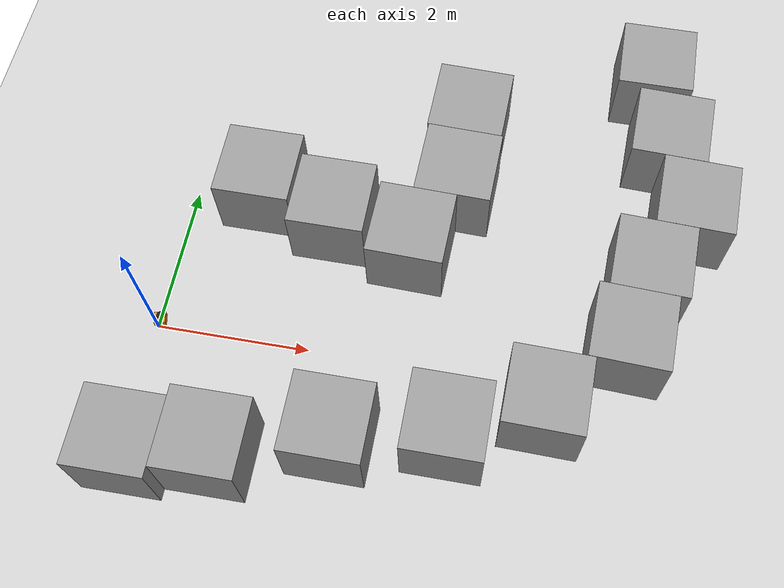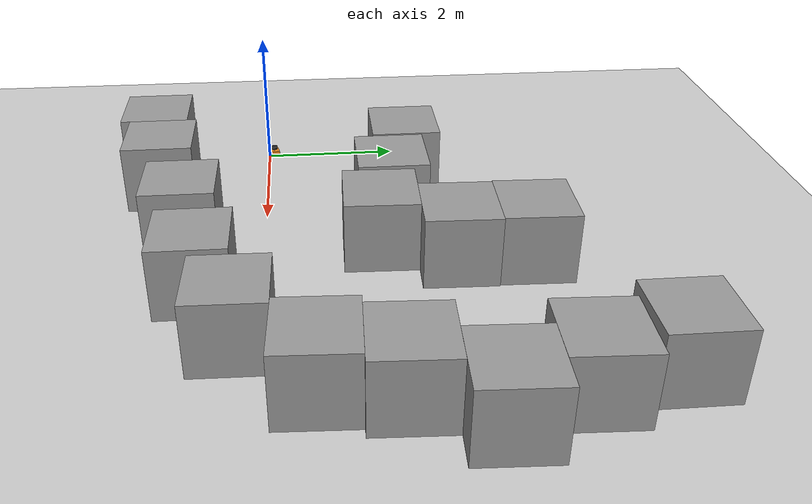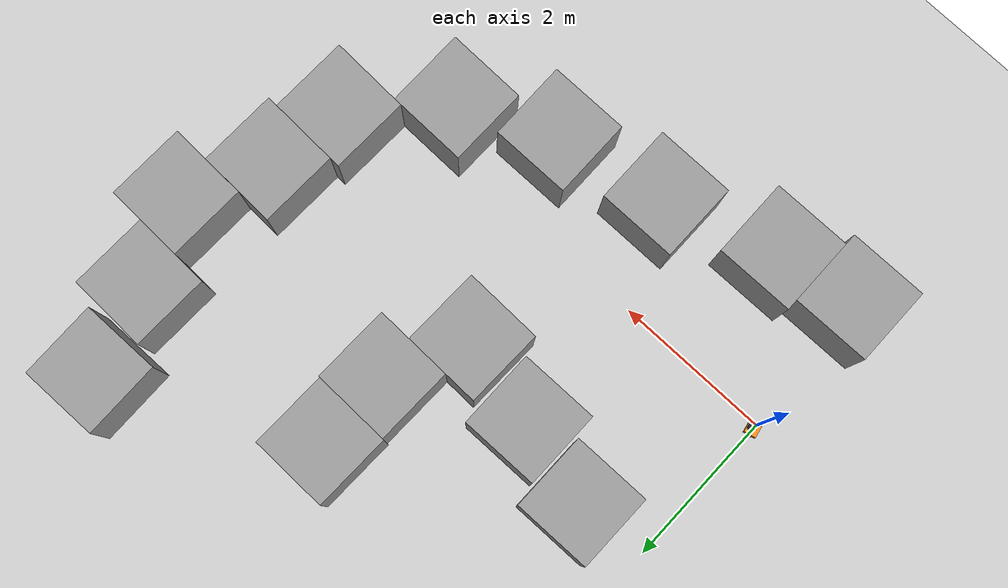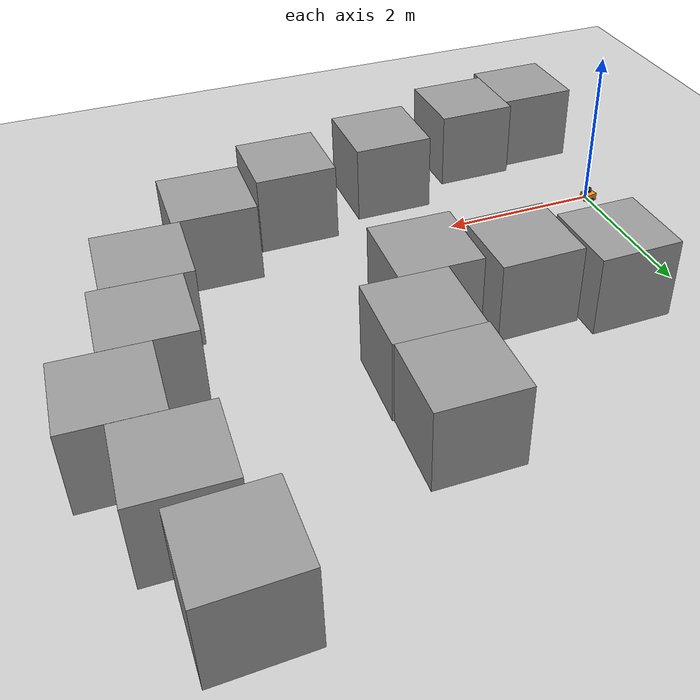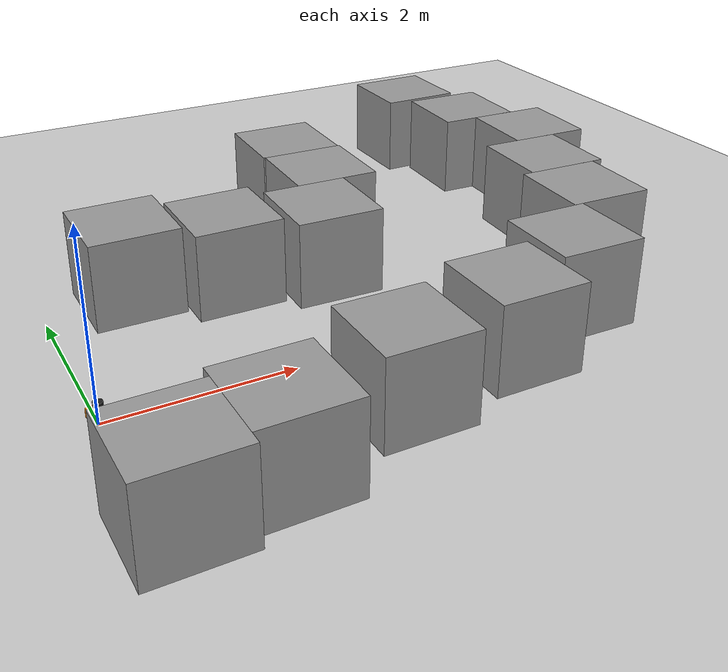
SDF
<sdf version="1.7">
 <world name="default">
  <light name="sun" type="directional">
   <pose>0 0 10 0 -0 0</pose>
   <diffuse>0.8 0.8 0.8 1</diffuse>
   <specular>0.2 0.2 0.2 1</specular>
   <attenuation>
    <range>1000</range>
    <constant>0.9</constant>
    <linear>0.01</linear>
    <quadratic>0.001</quadratic>
   </attenuation>
   <direction>-0.5 0.1 -0.9</direction>
   <spot><inner_angle>0</inner_angle><outer_angle>0</outer_angle><falloff>0</falloff></spot>
  </light>
  <model name="ground_plane">
   <static>1</static>
   <link name="link">
    <collision name="collision">
     <geometry><plane><normal>0 0 1</normal><size>100 100</size></plane></geometry>
     <surface><friction><ode><mu>100</mu><mu2>50</mu2></ode></friction></surface>
    </collision>
    <visual name="visual">
     <cast_shadows>0</cast_shadows>
     <geometry><plane><normal>0 0 1</normal><size>100 100</size></plane></geometry>
     <material>
      <script><uri>file://media/materials/scripts/gazebo.material</uri><name>Gazebo/Grey</name></script>
     </material>
    </visual>
   </link>
  </model>
  <gravity>0 0 -9.8</gravity>
  <magnetic_field>6e-06 2.3e-05 -4.2e-05</magnetic_field>
  <atmosphere type="adiabatic"/>
  <physics type="ode">
   <max_step_size>0.001</max_step_size>
   <real_time_factor>1</real_time_factor>
   <real_time_update_rate>1000</real_time_update_rate>
  </physics>
  <scene><ambient>0.4 0.4 0.4 1</ambient><background>0.7 0.7 0.7 1</background><shadows>1</shadows></scene>
  <audio><device>default</device></audio>
  <spherical_coordinates>
   <surface_model>EARTH_WGS84</surface_model>
   <latitude_deg>0</latitude_deg>
   <longitude_deg>0</longitude_deg>
   <elevation>0</elevation>
   <heading_deg>0</heading_deg>
  </spherical_coordinates>
  <model name="my_bot">
   <link name="base_link">
    <inertial>
     <pose>0.004032 0 0.014194 0 -0 0</pose>
     <mass>0.62</mass>
     <inertia>
      <ixx>0.0023779</ixx>
      <ixy>0</ixy>
      <ixz>-0.000214516</ixz>
      <iyy>0.00250232</iyy>
      <iyz>0</iyz>
      <izz>0.00212522</izz>
     </inertia>
    </inertial>
    <collision name="base_link_fixed_joint_lump__chassis_collision">
     <geometry><box><size>0.15 0.15 0.1</size></box></geometry>
    </collision>
    <collision name="base_link_fixed_joint_lump__back_caster_wheel_collision_1">
     <pose>-0.06 0 -0.06 0 -0 0</pose>
     <geometry><sphere><radius>0.01</radius></sphere></geometry>
     <surface><friction><ode><mu>0.001</mu><mu2>0.001</mu2></ode></friction></surface>
    </collision>
    <collision name="base_link_fixed_joint_lump__front_caster_wheel_collision_2">
     <pose>0.06 0 -0.06 0 -0 0</pose>
     <geometry><sphere><radius>0.01</radius></sphere></geometry>
     <surface><friction><ode><mu>0.001</mu><mu2>0.001</mu2></ode></friction></surface>
    </collision>
    <collision name="base_link_fixed_joint_lump__laser_frame_collision_3">
     <pose>0.025 0 0.1 0 -0 0</pose>
     <geometry><cylinder><length>0.04</length><radius>0.05</radius></cylinder></geometry>
    </collision>
    <visual name="base_link_fixed_joint_lump__chassis_visual">
     <geometry><box><size>0.15 0.15 0.1</size></box></geometry>
     <material>
      <script><name>Gazebo/Orange</name><uri>file://media/materials/scripts/gazebo.material</uri></script>
     </material>
    </visual>
    <visual name="base_link_fixed_joint_lump__back_caster_wheel_visual_1">
     <pose>-0.06 0 -0.06 0 -0 0</pose>
     <geometry><sphere><radius>0.01</radius></sphere></geometry>
     <material>
      <script><name>Gazebo/White</name><uri>file://media/materials/scripts/gazebo.material</uri></script>
     </material>
    </visual>
    <visual name="base_link_fixed_joint_lump__front_caster_wheel_visual_2">
     <pose>0.06 0 -0.06 0 -0 0</pose>
     <geometry><sphere><radius>0.01</radius></sphere></geometry>
     <material>
      <script><name>Gazebo/White</name><uri>file://media/materials/scripts/gazebo.material</uri></script>
     </material>
    </visual>
    <visual name="base_link_fixed_joint_lump__laser_frame_visual_3">
     <pose>0.025 0 0.1 0 -0 0</pose>
     <geometry><cylinder><length>0.04</length><radius>0.05</radius></cylinder></geometry>
     <material>
      <script><name>Gazebo/Black</name><uri>file://media/materials/scripts/gazebo.material</uri></script>
     </material>
    </visual>
    <visual name="base_link_fixed_joint_lump__laser_frame_visual_4">
     <pose>0.025 0 0.05 0 -0 0</pose>
     <geometry><cylinder><length>0.1</length><radius>0.01</radius></cylinder></geometry>
     <material>
      <script><name>Gazebo/Black</name><uri>file://media/materials/scripts/gazebo.material</uri></script>
     </material>
    </visual>
    <sensor name="laser" type="ray">
     <visualize>1</visualize>
     <update_rate>10</update_rate>
     <ray>
      <scan>
       <horizontal>
        <samples>360</samples>
        <min_angle>-3.14</min_angle>
        <max_angle>3.14</max_angle>
        <resolution>1</resolution>
       </horizontal>
       <vertical><samples>1</samples><min_angle>0</min_angle><max_angle>0</max_angle></vertical>
      </scan>
      <range><min>0.15</min><max>12</max></range>
     </ray>
     <plugin name="laser_controller" filename="libgazebo_ros_ray_sensor.so">
      <ros><argument>~/out:=scan</argument></ros>
      <output_type>sensor_msgs/LaserScan</output_type>
      <frame_name>laser_frame</frame_name>
     </plugin>
     <pose>0.025 0 0.1 0 -0 0</pose>
    </sensor>
   </link>
   <joint name="left_wheel_joint" type="revolute">
    <pose relative_to="base_link">0 0.075 -0.037 -1.5708 0 0</pose>
    <parent>base_link</parent>
    <child>left_wheel</child>
    <axis>
     <xyz>0 0 1</xyz>
     <limit><lower>-1e+16</lower><upper>1e+16</upper></limit>
     <dynamics><spring_reference>0</spring_reference><spring_stiffness>0</spring_stiffness></dynamics>
    </axis>
   </joint>
   <link name="left_wheel">
    <pose relative_to="left_wheel_joint">0 0 0 0 -0 0</pose>
    <inertial>
     <mass>0.05</mass>
     <inertia>
      <ixx>1.64292e-05</ixx>
      <ixy>0</ixy>
      <ixz>0</ixz>
      <iyy>1.64292e-05</iyy>
      <iyz>0</iyz>
      <izz>2.7225e-05</izz>
     </inertia>
    </inertial>
    <collision name="left_wheel_collision">
     <geometry><sphere><radius>0.033</radius></sphere></geometry>
    </collision>
    <visual name="left_wheel_visual">
     <geometry><cylinder><length>0.026</length><radius>0.033</radius></cylinder></geometry>
     <material>
      <script><name>Gazebo/Blue</name><uri>file://media/materials/scripts/gazebo.material</uri></script>
     </material>
    </visual>
   </link>
   <joint name="right_wheel_joint" type="revolute">
    <pose relative_to="base_link">0 -0.075 -0.037 1.5708 -0 0</pose>
    <parent>base_link</parent>
    <child>right_wheel</child>
    <axis>
     <xyz>0 0 -1</xyz>
     <limit><lower>-1e+16</lower><upper>1e+16</upper></limit>
     <dynamics><spring_reference>0</spring_reference><spring_stiffness>0</spring_stiffness></dynamics>
    </axis>
   </joint>
   <link name="right_wheel">
    <pose relative_to="right_wheel_joint">0 0 0 0 -0 0</pose>
    <inertial>
     <mass>0.05</mass>
     <inertia>
      <ixx>1.64292e-05</ixx>
      <ixy>0</ixy>
      <ixz>0</ixz>
      <iyy>1.64292e-05</iyy>
      <iyz>0</iyz>
      <izz>2.7225e-05</izz>
     </inertia>
    </inertial>
    <collision name="right_wheel_collision">
     <geometry><sphere><radius>0.033</radius></sphere></geometry>
    </collision>
    <visual name="right_wheel_visual">
     <geometry><cylinder><length>0.026</length><radius>0.033</radius></cylinder></geometry>
     <material>
      <script><name>Gazebo/Blue</name><uri>file://media/materials/scripts/gazebo.material</uri></script>
     </material>
    </visual>
   </link>
   <static>0</static>
   <plugin name="gazebo_ros2_control" filename="libgazebo_ros2_control.so">
    <parameters>/home/boat1470/finding_robot_ws/install/articubot_one/share/articubot_one/config/my_controllers.yaml</parameters>
   </plugin>
   <pose>0.010839 0.079281 0.069997 -3.8e-05 6e-06 0.208425</pose>
  </model>
  <model name="unit_box">
   <pose>0.175471 -1.69812 0.499995 1e-05 -0 0.007094</pose>
   <link name="link">
    <inertial>
     <mass>1</mass>
     <inertia>
      <ixx>0.166667</ixx>
      <ixy>0</ixy>
      <ixz>0</ixz>
      <iyy>0.166667</iyy>
      <iyz>0</iyz>
      <izz>0.166667</izz>
     </inertia>
    </inertial>
    <collision name="collision"><geometry><box><size>1 1 1</size></box></geometry></collision>
    <visual name="visual">
     <geometry><box><size>1 1 1</size></box></geometry>
     <material>
      <script><name>Gazebo/Grey</name><uri>file://media/materials/scripts/gazebo.material</uri></script>
     </material>
    </visual>
   </link>
  </model>
  <model name="unit_box_0">
   <pose>1.17446 -1.54919 0.499995 -1e-05 -0 0.00709</pose>
   <link name="link">
    <inertial>
     <mass>1</mass>
     <inertia>
      <ixx>0.166667</ixx>
      <ixy>0</ixy>
      <ixz>0</ixz>
      <iyy>0.166667</iyy>
      <iyz>0</iyz>
      <izz>0.166667</izz>
     </inertia>
    </inertial>
    <collision name="collision"><geometry><box><size>1 1 1</size></box></geometry></collision>
    <visual name="visual">
     <geometry><box><size>1 1 1</size></box></geometry>
     <material>
      <script><name>Gazebo/Grey</name><uri>file://media/materials/scripts/gazebo.material</uri></script>
     </material>
    </visual>
   </link>
  </model>
  <model name="unit_box_1">
   <pose>0.940943 2.09703 0.499995 0 1e-05 0</pose>
   <link name="link">
    <inertial>
     <mass>1</mass>
     <inertia>
      <ixx>0.166667</ixx>
      <ixy>0</ixy>
      <ixz>0</ixz>
      <iyy>0.166667</iyy>
      <iyz>0</iyz>
      <izz>0.166667</izz>
     </inertia>
    </inertial>
    <collision name="collision"><geometry><box><size>1 1 1</size></box></geometry></collision>
    <visual name="visual">
     <geometry><box><size>1 1 1</size></box></geometry>
     <material>
      <script><name>Gazebo/Grey</name><uri>file://media/materials/scripts/gazebo.material</uri></script>
     </material>
    </visual>
   </link>
  </model>
  <model name="unit_box_2">
   <pose>1.98177 1.81378 0.499995 -1e-05 -0 -0</pose>
   <link name="link">
    <inertial>
     <mass>1</mass>
     <inertia>
      <ixx>0.166667</ixx>
      <ixy>0</ixy>
      <ixz>0</ixz>
      <iyy>0.166667</iyy>
      <iyz>0</iyz>
      <izz>0.166667</izz>
     </inertia>
    </inertial>
    <collision name="collision"><geometry><box><size>1 1 1</size></box></geometry></collision>
    <visual name="visual">
     <geometry><box><size>1 1 1</size></box></geometry>
     <material>
      <script><name>Gazebo/Grey</name><uri>file://media/materials/scripts/gazebo.material</uri></script>
     </material>
    </visual>
   </link>
  </model>
  <model name="unit_box_3">
   <pose>3.06371 1.56546 0.499995 -1e-05 0 -0.027474</pose>
   <link name="link">
    <inertial>
     <mass>1</mass>
     <inertia>
      <ixx>0.166667</ixx>
      <ixy>0</ixy>
      <ixz>0</ixz>
      <iyy>0.166667</iyy>
      <iyz>0</iyz>
      <izz>0.166667</izz>
     </inertia>
    </inertial>
    <collision name="collision"><geometry><box><size>1 1 1</size></box></geometry></collision>
    <visual name="visual">
     <geometry><box><size>1 1 1</size></box></geometry>
     <material>
      <script><name>Gazebo/Grey</name><uri>file://media/materials/scripts/gazebo.material</uri></script>
     </material>
    </visual>
   </link>
  </model>
  <model name="unit_box_4">
   <pose>2.55632 -1.12 0.499995 -1e-05 -0 -0</pose>
   <link name="link">
    <inertial>
     <mass>1</mass>
     <inertia>
      <ixx>0.166667</ixx>
      <ixy>0</ixy>
      <ixz>0</ixz>
      <iyy>0.166667</iyy>
      <iyz>0</iyz>
      <izz>0.166667</izz>
     </inertia>
    </inertial>
    <collision name="collision"><geometry><box><size>1 1 1</size></box></geometry></collision>
    <visual name="visual">
     <geometry><box><size>1 1 1</size></box></geometry>
     <material>
      <script><name>Gazebo/Grey</name><uri>file://media/materials/scripts/gazebo.material</uri></script>
     </material>
    </visual>
   </link>
  </model>
  <model name="unit_box_5">
   <pose>3.93537 -0.85458 0.499995 0 1e-05 0</pose>
   <link name="link">
    <inertial>
     <mass>1</mass>
     <inertia>
      <ixx>0.166667</ixx>
      <ixy>0</ixy>
      <ixz>0</ixz>
      <iyy>0.166667</iyy>
      <iyz>0</iyz>
      <izz>0.166667</izz>
     </inertia>
    </inertial>
    <collision name="collision"><geometry><box><size>1 1 1</size></box></geometry></collision>
    <visual name="visual">
     <geometry><box><size>1 1 1</size></box></geometry>
     <material>
      <script><name>Gazebo/Grey</name><uri>file://media/materials/scripts/gazebo.material</uri></script>
     </material>
    </visual>
   </link>
  </model>
  <model name="unit_box_6">
   <pose>5.05374 -0.34281 0.499995 -0 -1e-05 -0.018314</pose>
   <link name="link">
    <inertial>
     <mass>1</mass>
     <inertia>
      <ixx>0.166667</ixx>
      <ixy>0</ixy>
      <ixz>0</ixz>
      <iyy>0.166667</iyy>
      <iyz>0</iyz>
      <izz>0.166667</izz>
     </inertia>
    </inertial>
    <collision name="collision"><geometry><box><size>1 1 1</size></box></geometry></collision>
    <visual name="visual">
     <geometry><box><size>1 1 1</size></box></geometry>
     <material>
      <script><name>Gazebo/Grey</name><uri>file://media/materials/scripts/gazebo.material</uri></script>
     </material>
    </visual>
   </link>
  </model>
  <model name="unit_box_7">
   <pose>5.97945 0.631624 0.499995 -1e-05 0 -0.040428</pose>
   <link name="link">
    <inertial>
     <mass>1</mass>
     <inertia>
      <ixx>0.166667</ixx>
      <ixy>0</ixy>
      <ixz>0</ixz>
      <iyy>0.166667</iyy>
      <iyz>0</iyz>
      <izz>0.166667</izz>
     </inertia>
    </inertial>
    <collision name="collision"><geometry><box><size>1 1 1</size></box></geometry></collision>
    <visual name="visual">
     <geometry><box><size>1 1 1</size></box></geometry>
     <material>
      <script><name>Gazebo/Grey</name><uri>file://media/materials/scripts/gazebo.material</uri></script>
     </material>
    </visual>
   </link>
  </model>
  <model name="unit_box_8">
   <pose>6.14738 1.62577 0.499995 -1e-05 -0 -0.040427</pose>
   <link name="link">
    <inertial>
     <mass>1</mass>
     <inertia>
      <ixx>0.166667</ixx>
      <ixy>0</ixy>
      <ixz>0</ixz>
      <iyy>0.166667</iyy>
      <iyz>0</iyz>
      <izz>0.166667</izz>
     </inertia>
    </inertial>
    <collision name="collision"><geometry><box><size>1 1 1</size></box></geometry></collision>
    <visual name="visual">
     <geometry><box><size>1 1 1</size></box></geometry>
     <material>
      <script><name>Gazebo/Grey</name><uri>file://media/materials/scripts/gazebo.material</uri></script>
     </material>
    </visual>
   </link>
  </model>
  <model name="unit_box_9">
   <pose>3.51937 2.55334 0.5 0 -0 -0.02743</pose>
   <link name="link">
    <inertial>
     <mass>1</mass>
     <inertia>
      <ixx>0.166667</ixx>
      <ixy>0</ixy>
      <ixz>0</ixz>
      <iyy>0.166667</iyy>
      <iyz>0</iyz>
      <izz>0.166667</izz>
     </inertia>
    </inertial>
    <collision name="collision"><geometry><box><size>1 1 1</size></box></geometry></collision>
    <visual name="visual">
     <geometry><box><size>1 1 1</size></box></geometry>
     <material>
      <script><name>Gazebo/Grey</name><uri>file://media/materials/scripts/gazebo.material</uri></script>
     </material>
    </visual>
   </link>
  </model>
  <model name="unit_box_10">
   <pose>6.6457 2.60695 0.499995 -0 1e-05 -0.03948</pose>
   <link name="link">
    <inertial>
     <mass>1</mass>
     <inertia>
      <ixx>0.166667</ixx>
      <ixy>0</ixy>
      <ixz>0</ixz>
      <iyy>0.166667</iyy>
      <iyz>0</iyz>
      <izz>0.166667</izz>
     </inertia>
    </inertial>
    <collision name="collision"><geometry><box><size>1 1 1</size></box></geometry></collision>
    <visual name="visual">
     <geometry><box><size>1 1 1</size></box></geometry>
     <material>
      <script><name>Gazebo/Grey</name><uri>file://media/materials/scripts/gazebo.material</uri></script>
     </material>
    </visual>
   </link>
  </model>
  <model name="unit_box_11">
   <pose>3.52784 3.55348 0.499995 0 1e-05 -0.027427</pose>
   <link name="link">
    <inertial>
     <mass>1</mass>
     <inertia>
      <ixx>0.166667</ixx>
      <ixy>0</ixy>
      <ixz>0</ixz>
      <iyy>0.166667</iyy>
      <iyz>0</iyz>
      <izz>0.166667</izz>
     </inertia>
    </inertial>
    <collision name="collision"><geometry><box><size>1 1 1</size></box></geometry></collision>
    <visual name="visual">
     <geometry><box><size>1 1 1</size></box></geometry>
     <material>
      <script><name>Gazebo/Grey</name><uri>file://media/materials/scripts/gazebo.material</uri></script>
     </material>
    </visual>
   </link>
  </model>
  <model name="unit_box_12">
   <pose>6.24369 3.62377 0.499995 0 -1e-05 -0.037359</pose>
   <link name="link">
    <inertial>
     <mass>1</mass>
     <inertia>
      <ixx>0.166667</ixx>
      <ixy>0</ixy>
      <ixz>0</ixz>
      <iyy>0.166667</iyy>
      <iyz>0</iyz>
      <izz>0.166667</izz>
     </inertia>
    </inertial>
    <collision name="collision"><geometry><box><size>1 1 1</size></box></geometry></collision>
    <visual name="visual">
     <geometry><box><size>1 1 1</size></box></geometry>
     <material>
      <script><name>Gazebo/Grey</name><uri>file://media/materials/scripts/gazebo.material</uri></script>
     </material>
    </visual>
   </link>
  </model>
  <model name="unit_box_13">
   <pose>5.96005 4.71026 0.5 0 -0 0</pose>
   <link name="link">
    <inertial>
     <mass>1</mass>
     <inertia>
      <ixx>0.166667</ixx>
      <ixy>0</ixy>
      <ixz>0</ixz>
      <iyy>0.166667</iyy>
      <iyz>0</iyz>
      <izz>0.166667</izz>
     </inertia>
    </inertial>
    <collision name="collision"><geometry><box><size>1 1 1</size></box></geometry></collision>
    <visual name="visual">
     <geometry><box><size>1 1 1</size></box></geometry>
     <material>
      <script><name>Gazebo/Grey</name><uri>file://media/materials/scripts/gazebo.material</uri></script>
     </material>
    </visual>
   </link>
  </model>
 </world>
</sdf>
